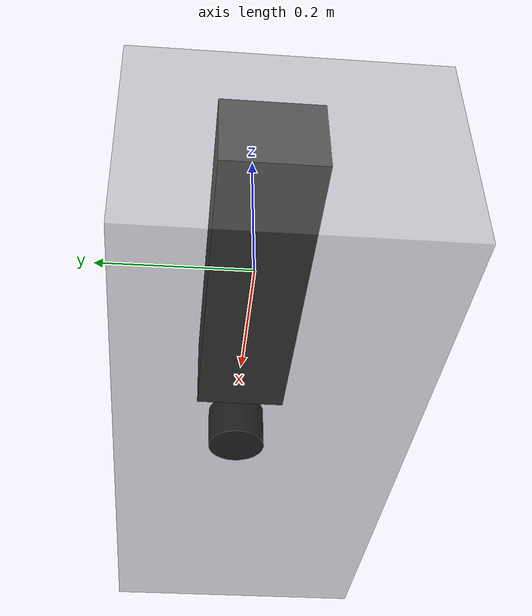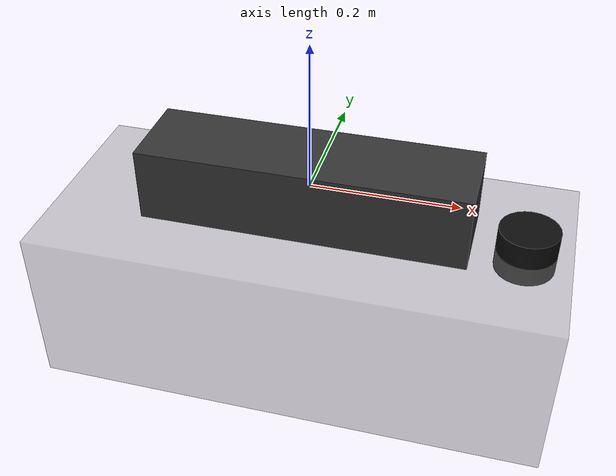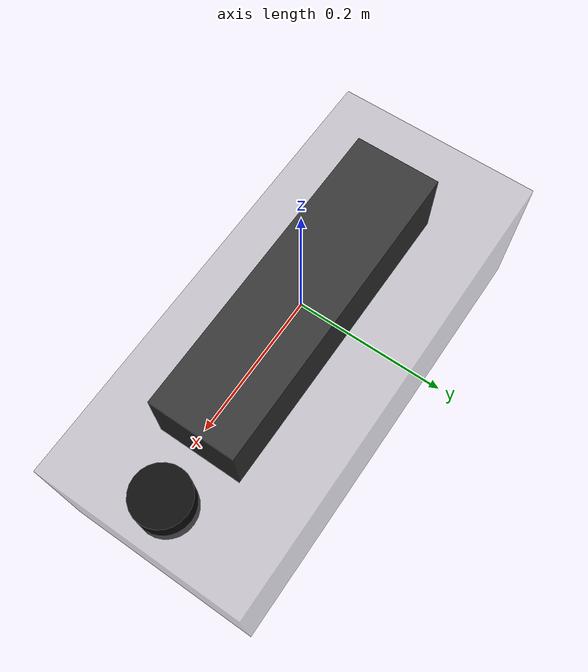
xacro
<?xml version="1.0"?>
<robot name="go2" xmlns:xacro="http://www.ros.org/wiki/xacro">

  <!-- ═══════════════════════════════════════════════════════════════════════
       Physical constants
  ════════════════════════════════════════════════════════════════════════════ -->
  <xacro:property name="body_length"  value="0.440"/>   <!-- trunk X -->
  <xacro:property name="body_width"   value="0.060"/>   <!-- trunk half-width in Y -->
  <xacro:property name="body_height"  value="0.100"/>   <!-- trunk Z -->
  <xacro:property name="body_mass"    value="6.921"/>

  <!-- Full robot standing envelope including legs (Unitree Go2 official specs) -->
  <xacro:property name="stance_length"  value="0.700"/>  <!-- full X with legs -->
  <xacro:property name="stance_width"   value="0.310"/>  <!-- full Y with legs -->
  <xacro:property name="safety_length"  value="0.800"/>  <!-- +50 mm safety margin on each side -->
  <xacro:property name="safety_width"   value="0.410"/>  <!-- +50 mm safety margin on each side -->
  <xacro:property name="stance_height"  value="0.230"/>

  <!-- Nominal standing torso centre height from ground [m]. -->
  <xacro:property name="standing_height" value="0.28"/>

  <!-- Front-top sensor mount matching official Unitree Go2 radar_joint -->
  <xacro:property name="lidar_x" value="0.28945"/>
  <xacro:property name="lidar_y" value="0.0"/>
  <xacro:property name="lidar_z" value="-0.046825"/>
  <xacro:property name="lidar_r" value="0.0"/>
  <xacro:property name="lidar_p" value="0.0"/>
  <xacro:property name="lidar_yaw" value="0.0"/>

  <!-- ═══════════════════════════════════════════════════════════════════════
       base_link  —  robot body centre
  ════════════════════════════════════════════════════════════════════════════ -->
  <link name="base_link">
    <visual>
      <origin xyz="0 0 0" rpy="0 0 0"/>
      <geometry>
        <box size="${body_length} ${body_width*2} ${body_height}"/>
      </geometry>
      <material name="dark_grey">
        <color rgba="0.2 0.2 0.2 1.0"/>
      </material>
    </visual>
    <!-- Leg stance envelope — represents the physical standing footprint.
         Positioned at z = -(standing_height - stance_height/2) relative to
         base_link, which is: -(0.28 - 0.115) = -0.165 m -->
    <visual name="stance_visual">
      <origin xyz="0 0 ${-(standing_height - stance_height/2)}" rpy="0 0 0"/>
      <geometry>
        <box size="${stance_length} ${stance_width} ${stance_height}"/>
      </geometry>
      <material name="stance_grey">
        <color rgba="0.5 0.5 0.5 0.4"/>
      </material>
    </visual>
    <collision>
      <origin xyz="0 0 0" rpy="0 0 0"/>
      <geometry>
        <box size="${body_length} ${body_width*2} ${body_height}"/>
      </geometry>
    </collision>
    <!-- Safety envelope used by collision consumers that inspect URDF collision geometry. -->
    <collision>
      <origin xyz="0 0 ${-(standing_height - stance_height/2)}" rpy="0 0 0"/>
      <geometry>
        <box size="${safety_length} ${safety_width} ${stance_height}"/>
      </geometry>
    </collision>
    <inertial>
      <origin xyz="0.021112 0.0 -0.005366" rpy="0 0 0"/>
      <mass value="${body_mass}"/>
      <inertia ixx="0.02448"  ixy="0.00012166" ixz="0.0014849"
               iyy="0.098077" iyz="-0.0000312"
               izz="0.107"/>
    </inertial>
  </link>

  <joint name="base_link_to_imu" type="fixed">
    <parent link="base_link"/>
    <child  link="imu_link"/>
    <origin xyz="0 0 0" rpy="0 0 0"/>
  </joint>

  <link name="imu_link">
    <inertial>
      <mass value="0.001"/>
      <origin xyz="0 0 0" rpy="0 0 0"/>
      <inertia ixx="1e-7" ixy="0" ixz="0" iyy="1e-7" iyz="0" izz="1e-7"/>
    </inertial>
  </link>

  <joint name="base_link_to_lidar" type="fixed">
    <parent link="base_link"/>
    <child  link="lidar_link"/>
    <origin xyz="${lidar_x} ${lidar_y} ${lidar_z}" rpy="${lidar_r} ${lidar_p} ${lidar_yaw}"/>
  </joint>

  <link name="lidar_link">
    <visual>
      <origin xyz="0 0 0" rpy="0 0 0"/>
      <geometry>
        <cylinder radius="0.04" length="0.06"/>
      </geometry>
      <material name="lidar_black">
        <color rgba="0.05 0.05 0.05 1.0"/>
      </material>
    </visual>
    <inertial>
      <mass value="0.001"/>
      <origin xyz="0 0 0" rpy="0 0 0"/>
      <inertia ixx="1e-7" ixy="0" ixz="0" iyy="1e-7" iyz="0" izz="1e-7"/>
    </inertial>
  </link>

</robot>
